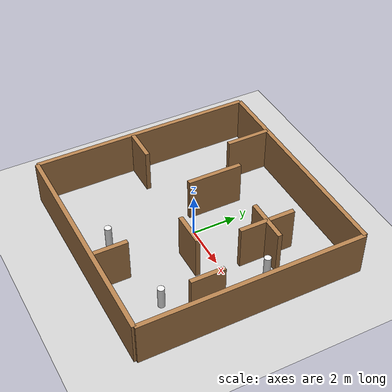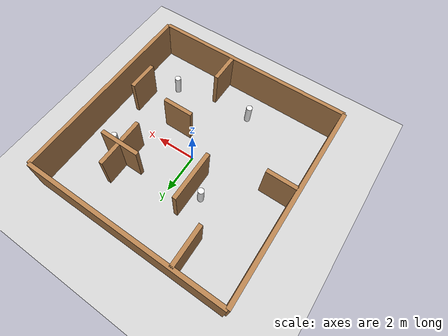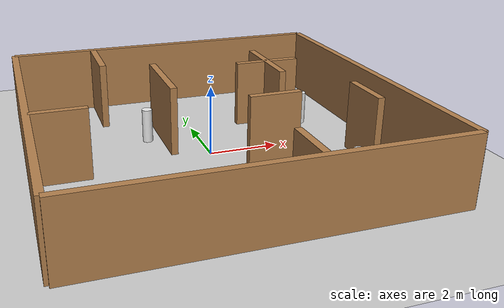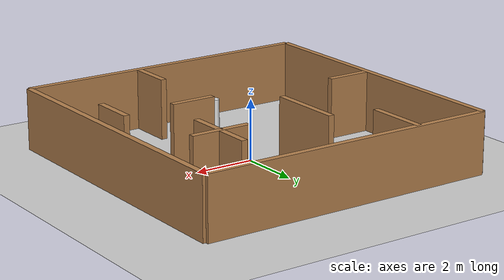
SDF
<?xml version="1.0" ?>
<sdf version="1.6">
  <world name="default">
    <light name="sun_light" type="directional">
      <cast_shadows>true</cast_shadows>
      <pose>0 0 10 0 0 0</pose>
      <diffuse>0.8 0.8 0.8 1</diffuse>
      <specular>0.2 0.2 0.2 1</specular>
      <direction>-0.5 0.1 -0.9</direction>
    </light>

    <model name="ground_plane">
      <static>true</static>
      <link name="link">
        <collision name="collision"><geometry><plane><normal>0 0 1</normal><size>50 50</size></plane></geometry></collision>
        <visual name="visual">
          <geometry><plane><normal>0 0 1</normal><size>50 50</size></plane></geometry>
          <material><script><uri>file://media/materials/scripts/gazebo.material</uri><name>Gazebo/Grey</name></script></material>
        </visual>
      </link>
    </model>

    <model name="wall_front"><pose>0 5 1 0 0 0</pose><static>true</static><link name="link"><collision name="c"><geometry><box><size>10 0.2 2</size></box></geometry></collision><visual name="v"><geometry><box><size>10 0.2 2</size></box></geometry><material><script><uri>file://media/materials/scripts/gazebo.material</uri><name>Gazebo/Wood</name></script></material></visual></link></model>
    <model name="wall_back"><pose>0 -5 1 0 0 0</pose><static>true</static><link name="link"><collision name="c"><geometry><box><size>10 0.2 2</size></box></geometry></collision><visual name="v"><geometry><box><size>10 0.2 2</size></box></geometry><material><script><uri>file://media/materials/scripts/gazebo.material</uri><name>Gazebo/Wood</name></script></material></visual></link></model>
    <model name="wall_left"><pose>-5 0 1 0 0 1.5708</pose><static>true</static><link name="link"><collision name="c"><geometry><box><size>10 0.2 2</size></box></geometry></collision><visual name="v"><geometry><box><size>10 0.2 2</size></box></geometry><material><script><uri>file://media/materials/scripts/gazebo.material</uri><name>Gazebo/Wood</name></script></material></visual></link></model>
    <model name="wall_right"><pose>5 0 1 0 0 1.5708</pose><static>true</static><link name="link"><collision name="c"><geometry><box><size>10 0.2 2</size></box></geometry></collision><visual name="v"><geometry><box><size>10 0.2 2</size></box></geometry><material><script><uri>file://media/materials/scripts/gazebo.material</uri><name>Gazebo/Wood</name></script></material></visual></link></model>

    <model name="obs_tl_vert"><pose>-2.5 4 1 0 0 0</pose><static>true</static><link name="link"><collision name="c"><geometry><box><size>0.2 2 2</size></box></geometry></collision><visual name="v"><geometry><box><size>0.2 2 2</size></box></geometry><material><script><uri>file://media/materials/scripts/gazebo.material</uri><name>Gazebo/Wood</name></script></material></visual></link></model>

    <model name="obs_ml_horz"><pose>-4.2 -0.5 1 0 0 0</pose><static>true</static><link name="link"><collision name="c"><geometry><box><size>1.5 0.2 2</size></box></geometry></collision><visual name="v"><geometry><box><size>1.5 0.2 2</size></box></geometry><material><script><uri>file://media/materials/scripts/gazebo.material</uri><name>Gazebo/Wood</name></script></material></visual></link></model>

    <model name="obs_ml_vert"><pose>-1.0 1.5 1 0 0 0</pose><static>true</static><link name="link"><collision name="c"><geometry><box><size>0.2 2.5 2</size></box></geometry></collision><visual name="v"><geometry><box><size>0.2 2.5 2</size></box></geometry><material><script><uri>file://media/materials/scripts/gazebo.material</uri><name>Gazebo/Wood</name></script></material></visual></link></model>

    <model name="obs_cross_v"><pose>2.5 2.0 1 0 0 0</pose><static>true</static><link name="link"><collision name="c"><geometry><box><size>0.2 2.5 2</size></box></geometry></collision><visual name="v"><geometry><box><size>0.2 2.5 2</size></box></geometry><material><script><uri>file://media/materials/scripts/gazebo.material</uri><name>Gazebo/Wood</name></script></material></visual></link></model>
    <model name="obs_cross_h"><pose>2.5 2.0 1 0 0 0</pose><static>true</static><link name="link"><collision name="c"><geometry><box><size>2.0 0.2 2</size></box></geometry></collision><visual name="v"><geometry><box><size>2.0 0.2 2</size></box></geometry><material><script><uri>file://media/materials/scripts/gazebo.material</uri><name>Gazebo/Wood</name></script></material></visual></link></model>

    <model name="obs_mr_horz"><pose>1.5 -1.0 1 0 0 0</pose><static>true</static><link name="link"><collision name="c"><geometry><box><size>1.5 0.2 2</size></box></geometry></collision><visual name="v"><geometry><box><size>1.5 0.2 2</size></box></geometry><material><script><uri>file://media/materials/scripts/gazebo.material</uri><name>Gazebo/Wood</name></script></material></visual></link></model>

    <model name="obs_br_vert"><pose>4.0 -1.5 1 0 0 0</pose><static>true</static><link name="link"><collision name="c"><geometry><box><size>0.2 1.5 2</size></box></geometry></collision><visual name="v"><geometry><box><size>0.2 1.5 2</size></box></geometry><material><script><uri>file://media/materials/scripts/gazebo.material</uri><name>Gazebo/Wood</name></script></material></visual></link></model>

    <model name="obs_bm_vert"><pose>1.0 -4.2 1 0 0 0</pose><static>true</static><link name="link"><collision name="c"><geometry><box><size>0.2 1.5 2</size></box></geometry></collision><visual name="v"><geometry><box><size>0.2 1.5 2</size></box></geometry><material><script><uri>file://media/materials/scripts/gazebo.material</uri><name>Gazebo/Wood</name></script></material></visual></link></model>

    <model name="cyl_1">
      <pose>-1.5 1.5 0.5 0 0 0</pose><static>true</static>
      <link name="link"><collision name="c"><geometry><cylinder><radius>0.15</radius><length>1</length></cylinder></geometry></collision>
      <visual name="v"><geometry><cylinder><radius>0.15</radius><length>1</length></cylinder></geometry><material><script><uri>file://media/materials/scripts/gazebo.material</uri><name>Gazebo/White</name></script></material></visual></link>
    </model>

    <model name="cyl_2">
      <pose>3.5 1.5 0.5 0 0 0</pose><static>true</static>
      <link name="link"><collision name="c"><geometry><cylinder><radius>0.15</radius><length>1</length></cylinder></geometry></collision>
      <visual name="v"><geometry><cylinder><radius>0.15</radius><length>1</length></cylinder></geometry><material><script><uri>file://media/materials/scripts/gazebo.material</uri><name>Gazebo/White</name></script></material></visual></link>
    </model>

    <model name="cyl_3">
      <pose>-1.0 -3.5 0.5 0 0 0</pose><static>true</static>
      <link name="link"><collision name="c"><geometry><cylinder><radius>0.15</radius><length>1</length></cylinder></geometry></collision>
      <visual name="v"><geometry><cylinder><radius>0.15</radius><length>1</length></cylinder></geometry><material><script><uri>file://media/materials/scripts/gazebo.material</uri><name>Gazebo/White</name></script></material></visual></link>
    </model>

    <model name="cyl_4">
      <pose>3.0 -3.0 0.5 0 0 0</pose><static>true</static>
      <link name="link"><collision name="c"><geometry><cylinder><radius>0.15</radius><length>1</length></cylinder></geometry></collision>
      <visual name="v"><geometry><cylinder><radius>0.15</radius><length>1</length></cylinder></geometry><material><script><uri>file://media/materials/scripts/gazebo.material</uri><name>Gazebo/White</name></script></material></visual></link>
    </model>

    <plugin name="gazebo_ros_state" filename="libgazebo_ros_state.so">
      <ros>
        <namespace>/gazebo</namespace>
      </ros>
    </plugin>
  </world>
</sdf>
